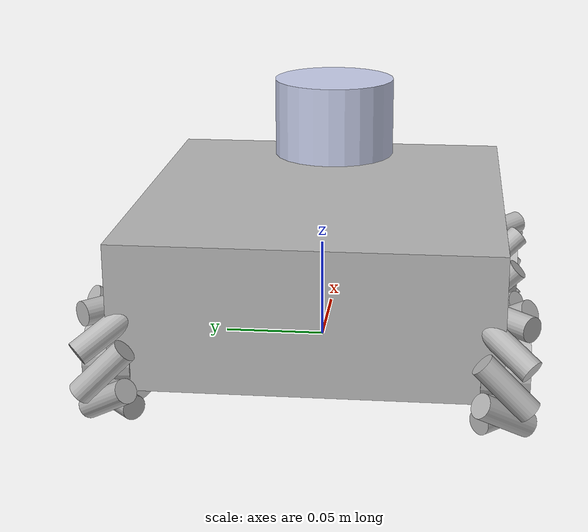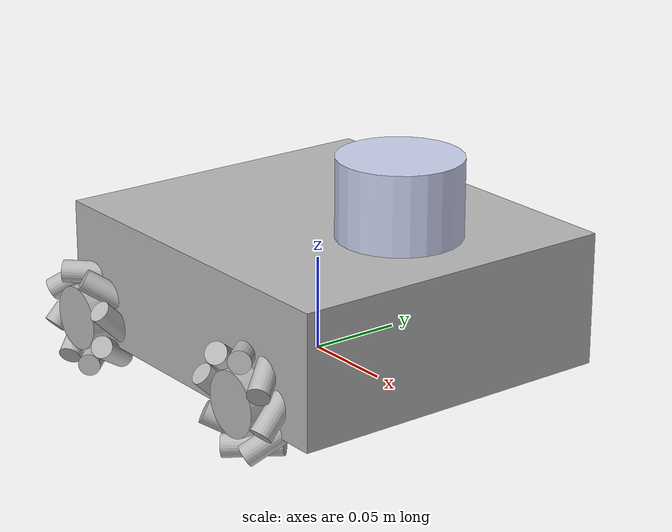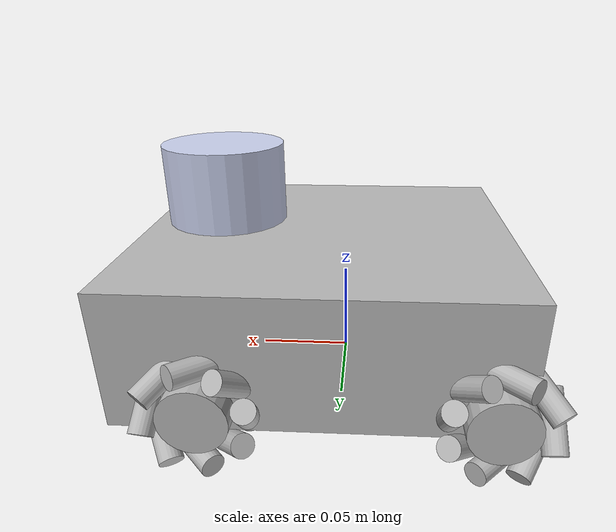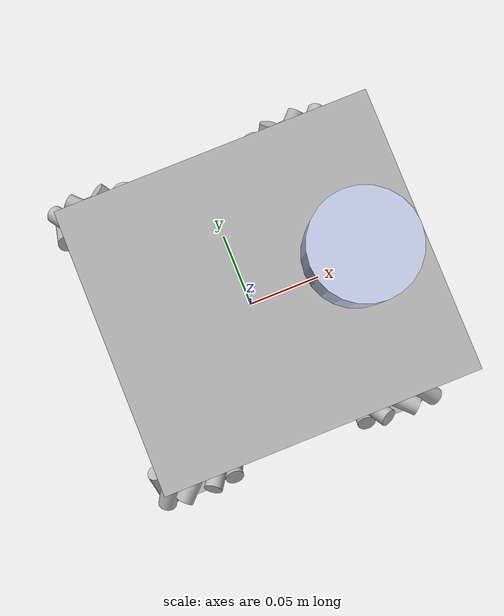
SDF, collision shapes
<?xml version="1.0"?>
<sdf version="1.10">
  <model name="small_rover">
    <self_collide>false</self_collide>
    <link name="base_link">
      <inertial><mass>0.764</mass><inertia><ixx>0.0038</ixx><iyy>0.0041</iyy><izz>0.0060</izz></inertia></inertial>
      <visual name="base_mesh"><pose>0 0 0 0 0 -1.570796327</pose><geometry><mesh><uri>model://small_rover_base/meshes/Rover_base_clean.obj</uri></mesh></geometry></visual>
      <collision name="chassis_collision"><pose>0.010 0 0.040 0 0 0</pose><geometry><box><size>0.200 0.180 0.070</size></box></geometry><surface><friction><ode><mu>0.8</mu><mu2>0.8</mu2></ode></friction></surface></collision>
    </link>

    <link name="lidar_link">
      <pose relative_to="base_link">0.065517 0 0.081 0 0 0</pose>
      <inertial><mass>0.020</mass><inertia><ixx>0.00001</ixx><iyy>0.00001</iyy><izz>0.00001</izz></inertia></inertial>
      <visual name="lidar_mesh"><pose>0 0 0 0 0 -1.570796327</pose><geometry><mesh><uri>model://RPLIDAR_C1_v1/meshes/RPLIDAR C1 v1.obj</uri></mesh></geometry><material><ambient>0.792157 0.819608 0.933333 1</ambient><diffuse>0.792157 0.819608 0.933333 1</diffuse><specular>0.2 0.2 0.2 1</specular></material></visual>
      <collision name="lidar_collision"><pose>0 0 0.020 0 0 0</pose><geometry><cylinder><radius>0.032</radius><length>0.041</length></cylinder></geometry></collision>
      <sensor name="rover_lidar" type="gpu_lidar"><pose>0 0 0.03 0 0 0</pose><topic>/small_rover/lidar/scan</topic><update_rate>10</update_rate><ray><scan><horizontal><samples>360</samples><resolution>1</resolution><min_angle>-3.141592654</min_angle><max_angle>3.141592654</max_angle></horizontal><vertical><samples>1</samples><resolution>1</resolution><min_angle>0</min_angle><max_angle>0</max_angle></vertical></scan><range><min>0.02</min><max>12.0</max><resolution>0.001</resolution></range></ray><always_on>true</always_on><visualize>true</visualize></sensor>
    </link>
    <joint name="lidar_joint" type="fixed"><parent>base_link</parent><child>lidar_link</child></joint>

    <link name="front_left_wheel">
      <pose relative_to="base_link">0.064610 0.090500 0.017000 0 0 -1.570796327</pose>
      <inertial><mass>0.030</mass><inertia><ixx>0.000008</ixx><iyy>0.000015</iyy><izz>0.000015</izz></inertia></inertial>
      <visual name="wheel_mesh"><geometry><mesh><uri>model://small_rover_wheels/meshes/Mecanum_Wheel_60mm_FrontLeft.obj</uri></mesh></geometry></visual>
      <collision name="hub_collision"><pose>0 0 0 0 1.570796327 0</pose><geometry><cylinder><radius>0.017</radius><length>0.022</length></cylinder></geometry><surface><friction><ode><mu>0.8</mu><mu2>0.8</mu2></ode></friction></surface></collision>
    </link>
    <joint name="front_left_wheel_joint" type="revolute"><pose relative_to="base_link">0.064610 0.090500 0.017000 0 0 -1.570796327</pose><parent>base_link</parent><child>front_left_wheel</child><axis><xyz expressed_in="base_link">0 1 0</xyz><limit><lower>-1e16</lower><upper>1e16</upper><effort>1.5</effort><velocity>80</velocity></limit><dynamics><damping>0.0005</damping></dynamics></axis></joint>
    <link name="front_left_roller_0"><pose relative_to="front_left_wheel">-0.000003000 0.022801000 0.003020000 0.000000000 -0.776639639 -0.131828760</pose><inertial><mass>0.003</mass><inertia><ixx>0.00000002</ixx><iyy>0.00000024</iyy><izz>0.00000024</izz></inertia></inertial><visual name="mesh"><geometry><mesh><uri>model://small_rover_wheels/meshes/roller_Varsayilan.obj</uri></mesh></geometry></visual><collision name="roller_contact"><pose>0 0 0 0 1.570796327 0</pose><geometry><cylinder><radius>0.0059</radius><length>0.0308</length></cylinder></geometry><surface><friction><ode><mu>1.2</mu><mu2>0.9</mu2></ode></friction></surface></collision></link>
    <joint name="front_left_roller_0_joint" type="revolute"><pose relative_to="front_left_wheel">-0.000003000 0.022801000 0.003020000 0.000000000 -0.776639639 -0.131828760</pose><parent>front_left_wheel</parent><child>front_left_roller_0</child><axis><xyz>1 0 0</xyz><limit><lower>-1e16</lower><upper>1e16</upper><effort>0</effort><velocity>1000</velocity></limit><dynamics><damping>0.00001</damping><friction>0.00001</friction></dynamics></axis></joint>
    <link name="front_left_roller_1"><pose relative_to="front_left_wheel">-0.000003000 0.013987279 0.018258204 0.888508739 -0.443722978 -0.671482516</pose><inertial><mass>0.003</mass><inertia><ixx>0.00000002</ixx><iyy>0.00000024</iyy><izz>0.00000024</izz></inertia></inertial><visual name="mesh"><geometry><mesh><uri>model://small_rover_wheels/meshes/roller_Varsayilan.obj</uri></mesh></geometry></visual><collision name="roller_contact"><pose>0 0 0 0 1.570796327 0</pose><geometry><cylinder><radius>0.0059</radius><length>0.0308</length></cylinder></geometry><surface><friction><ode><mu>1.2</mu><mu2>0.9</mu2></ode></friction></surface></collision></link>
    <joint name="front_left_roller_1_joint" type="revolute"><pose relative_to="front_left_wheel">-0.000003000 0.013987279 0.018258204 0.888508739 -0.443722978 -0.671482516</pose><parent>front_left_wheel</parent><child>front_left_roller_1</child><axis><xyz>1 0 0</xyz><limit><lower>-1e16</lower><upper>1e16</upper><effort>0</effort><velocity>1000</velocity></limit><dynamics><damping>0.00001</damping><friction>0.00001</friction></dynamics></axis></joint>
    <link name="front_left_roller_2"><pose relative_to="front_left_wheel">-0.000003000 -0.003020000 0.022801000 1.478126516 0.093895659 -0.780996596</pose><inertial><mass>0.003</mass><inertia><ixx>0.00000002</ixx><iyy>0.00000024</iyy><izz>0.00000024</izz></inertia></inertial><visual name="mesh"><geometry><mesh><uri>model://small_rover_wheels/meshes/roller_Varsayilan.obj</uri></mesh></geometry></visual><collision name="roller_contact"><pose>0 0 0 0 1.570796327 0</pose><geometry><cylinder><radius>0.0059</radius><length>0.0308</length></cylinder></geometry><surface><friction><ode><mu>1.2</mu><mu2>0.9</mu2></ode></friction></surface></collision></link>
    <joint name="front_left_roller_2_joint" type="revolute"><pose relative_to="front_left_wheel">-0.000003000 -0.003020000 0.022801000 1.478126516 0.093895659 -0.780996596</pose><parent>front_left_wheel</parent><child>front_left_roller_2</child><axis><xyz>1 0 0</xyz><limit><lower>-1e16</lower><upper>1e16</upper><effort>0</effort><velocity>1000</velocity></limit><dynamics><damping>0.00001</damping><friction>0.00001</friction></dynamics></axis></joint>
    <link name="front_left_roller_3"><pose relative_to="front_left_wheel">-0.000003000 -0.018258204 0.013987279 2.130530953 0.596678917 -0.545659158</pose><inertial><mass>0.003</mass><inertia><ixx>0.00000002</ixx><iyy>0.00000024</iyy><izz>0.00000024</izz></inertia></inertial><visual name="mesh"><geometry><mesh><uri>model://small_rover_wheels/meshes/roller_Varsayilan.obj</uri></mesh></geometry></visual><collision name="roller_contact"><pose>0 0 0 0 1.570796327 0</pose><geometry><cylinder><radius>0.0059</radius><length>0.0308</length></cylinder></geometry><surface><friction><ode><mu>1.2</mu><mu2>0.9</mu2></ode></friction></surface></collision></link>
    <joint name="front_left_roller_3_joint" type="revolute"><pose relative_to="front_left_wheel">-0.000003000 -0.018258204 0.013987279 2.130530953 0.596678917 -0.545659158</pose><parent>front_left_wheel</parent><child>front_left_roller_3</child><axis><xyz>1 0 0</xyz><limit><lower>-1e16</lower><upper>1e16</upper><effort>0</effort><velocity>1000</velocity></limit><dynamics><damping>0.00001</damping><friction>0.00001</friction></dynamics></axis></joint>
    <link name="front_left_roller_4"><pose relative_to="front_left_wheel">-0.000003000 -0.022801000 -0.003020000 3.141592654 0.776639639 0.131828760</pose><inertial><mass>0.003</mass><inertia><ixx>0.00000002</ixx><iyy>0.00000024</iyy><izz>0.00000024</izz></inertia></inertial><visual name="mesh"><geometry><mesh><uri>model://small_rover_wheels/meshes/roller_Varsayilan.obj</uri></mesh></geometry></visual><collision name="roller_contact"><pose>0 0 0 0 1.570796327 0</pose><geometry><cylinder><radius>0.0059</radius><length>0.0308</length></cylinder></geometry><surface><friction><ode><mu>1.2</mu><mu2>0.9</mu2></ode></friction></surface></collision></link>
    <joint name="front_left_roller_4_joint" type="revolute"><pose relative_to="front_left_wheel">-0.000003000 -0.022801000 -0.003020000 3.141592654 0.776639639 0.131828760</pose><parent>front_left_wheel</parent><child>front_left_roller_4</child><axis><xyz>1 0 0</xyz><limit><lower>-1e16</lower><upper>1e16</upper><effort>0</effort><velocity>1000</velocity></limit><dynamics><damping>0.00001</damping><friction>0.00001</friction></dynamics></axis></joint>
    <link name="front_left_roller_5"><pose relative_to="front_left_wheel">-0.000003000 -0.013987279 -0.018258204 -2.253083915 0.443722978 0.671482516</pose><inertial><mass>0.003</mass><inertia><ixx>0.00000002</ixx><iyy>0.00000024</iyy><izz>0.00000024</izz></inertia></inertial><visual name="mesh"><geometry><mesh><uri>model://small_rover_wheels/meshes/roller_Varsayilan.obj</uri></mesh></geometry></visual><collision name="roller_contact"><pose>0 0 0 0 1.570796327 0</pose><geometry><cylinder><radius>0.0059</radius><length>0.0308</length></cylinder></geometry><surface><friction><ode><mu>1.2</mu><mu2>0.9</mu2></ode></friction></surface></collision></link>
    <joint name="front_left_roller_5_joint" type="revolute"><pose relative_to="front_left_wheel">-0.000003000 -0.013987279 -0.018258204 -2.253083915 0.443722978 0.671482516</pose><parent>front_left_wheel</parent><child>front_left_roller_5</child><axis><xyz>1 0 0</xyz><limit><lower>-1e16</lower><upper>1e16</upper><effort>0</effort><velocity>1000</velocity></limit><dynamics><damping>0.00001</damping><friction>0.00001</friction></dynamics></axis></joint>
    <link name="front_left_roller_6"><pose relative_to="front_left_wheel">-0.000003000 0.003020000 -0.022801000 -1.663466138 -0.093895659 0.780996596</pose><inertial><mass>0.003</mass><inertia><ixx>0.00000002</ixx><iyy>0.00000024</iyy><izz>0.00000024</izz></inertia></inertial><visual name="mesh"><geometry><mesh><uri>model://small_rover_wheels/meshes/roller_Varsayilan.obj</uri></mesh></geometry></visual><collision name="roller_contact"><pose>0 0 0 0 1.570796327 0</pose><geometry><cylinder><radius>0.0059</radius><length>0.0308</length></cylinder></geometry><surface><friction><ode><mu>1.2</mu><mu2>0.9</mu2></ode></friction></surface></collision></link>
    <joint name="front_left_roller_6_joint" type="revolute"><pose relative_to="front_left_wheel">-0.000003000 0.003020000 -0.022801000 -1.663466138 -0.093895659 0.780996596</pose><parent>front_left_wheel</parent><child>front_left_roller_6</child><axis><xyz>1 0 0</xyz><limit><lower>-1e16</lower><upper>1e16</upper><effort>0</effort><velocity>1000</velocity></limit><dynamics><damping>0.00001</damping><friction>0.00001</friction></dynamics></axis></joint>
    <link name="front_left_roller_7"><pose relative_to="front_left_wheel">-0.000003000 0.018258204 -0.013987279 -1.011061701 -0.596678917 0.545659158</pose><inertial><mass>0.003</mass><inertia><ixx>0.00000002</ixx><iyy>0.00000024</iyy><izz>0.00000024</izz></inertia></inertial><visual name="mesh"><geometry><mesh><uri>model://small_rover_wheels/meshes/roller_Varsayilan.obj</uri></mesh></geometry></visual><collision name="roller_contact"><pose>0 0 0 0 1.570796327 0</pose><geometry><cylinder><radius>0.0059</radius><length>0.0308</length></cylinder></geometry><surface><friction><ode><mu>1.2</mu><mu2>0.9</mu2></ode></friction></surface></collision></link>
    <joint name="front_left_roller_7_joint" type="revolute"><pose relative_to="front_left_wheel">-0.000003000 0.018258204 -0.013987279 -1.011061701 -0.596678917 0.545659158</pose><parent>front_left_wheel</parent><child>front_left_roller_7</child><axis><xyz>1 0 0</xyz><limit><lower>-1e16</lower><upper>1e16</upper><effort>0</effort><velocity>1000</velocity></limit><dynamics><damping>0.00001</damping><friction>0.00001</friction></dynamics></axis></joint>

    <link name="front_right_wheel">
      <pose relative_to="base_link">0.064610 -0.090500 0.017000 0 0 -1.570796327</pose>
      <inertial><mass>0.030</mass><inertia><ixx>0.000008</ixx><iyy>0.000015</iyy><izz>0.000015</izz></inertia></inertial>
      <visual name="wheel_mesh"><geometry><mesh><uri>model://small_rover_wheels/meshes/Mecanum_Wheel_60mm_FrontRight.obj</uri></mesh></geometry></visual>
      <collision name="hub_collision"><pose>0 0 0 0 1.570796327 0</pose><geometry><cylinder><radius>0.017</radius><length>0.022</length></cylinder></geometry><surface><friction><ode><mu>0.8</mu><mu2>0.8</mu2></ode></friction></surface></collision>
    </link>
    <joint name="front_right_wheel_joint" type="revolute"><pose relative_to="base_link">0.064610 -0.090500 0.017000 0 0 -1.570796327</pose><parent>base_link</parent><child>front_right_wheel</child><axis><xyz expressed_in="base_link">0 1 0</xyz><limit><lower>-1e16</lower><upper>1e16</upper><effort>1.5</effort><velocity>80</velocity></limit><dynamics><damping>0.0005</damping></dynamics></axis></joint>
    <link name="front_right_roller_0"><pose relative_to="front_right_wheel">0.000003000 0.022801000 0.003020000 0.000000000 0.776639639 0.131828760</pose><inertial><mass>0.003</mass><inertia><ixx>0.00000002</ixx><iyy>0.00000024</iyy><izz>0.00000024</izz></inertia></inertial><visual name="mesh"><geometry><mesh><uri>model://small_rover_wheels/meshes/roller_Varsayilan.obj</uri></mesh></geometry></visual><collision name="roller_contact"><pose>0 0 0 0 1.570796327 0</pose><geometry><cylinder><radius>0.0059</radius><length>0.0308</length></cylinder></geometry><surface><friction><ode><mu>1.2</mu><mu2>0.9</mu2></ode></friction></surface></collision></link>
    <joint name="front_right_roller_0_joint" type="revolute"><pose relative_to="front_right_wheel">0.000003000 0.022801000 0.003020000 0.000000000 0.776639639 0.131828760</pose><parent>front_right_wheel</parent><child>front_right_roller_0</child><axis><xyz>1 0 0</xyz><limit><lower>-1e16</lower><upper>1e16</upper><effort>0</effort><velocity>1000</velocity></limit><dynamics><damping>0.00001</damping><friction>0.00001</friction></dynamics></axis></joint>
    <link name="front_right_roller_1"><pose relative_to="front_right_wheel">0.000003000 0.013987279 0.018258204 0.888508739 0.443722978 0.671482516</pose><inertial><mass>0.003</mass><inertia><ixx>0.00000002</ixx><iyy>0.00000024</iyy><izz>0.00000024</izz></inertia></inertial><visual name="mesh"><geometry><mesh><uri>model://small_rover_wheels/meshes/roller_Varsayilan.obj</uri></mesh></geometry></visual><collision name="roller_contact"><pose>0 0 0 0 1.570796327 0</pose><geometry><cylinder><radius>0.0059</radius><length>0.0308</length></cylinder></geometry><surface><friction><ode><mu>1.2</mu><mu2>0.9</mu2></ode></friction></surface></collision></link>
    <joint name="front_right_roller_1_joint" type="revolute"><pose relative_to="front_right_wheel">0.000003000 0.013987279 0.018258204 0.888508739 0.443722978 0.671482516</pose><parent>front_right_wheel</parent><child>front_right_roller_1</child><axis><xyz>1 0 0</xyz><limit><lower>-1e16</lower><upper>1e16</upper><effort>0</effort><velocity>1000</velocity></limit><dynamics><damping>0.00001</damping><friction>0.00001</friction></dynamics></axis></joint>
    <link name="front_right_roller_2"><pose relative_to="front_right_wheel">0.000003000 -0.003020000 0.022801000 1.478126516 -0.093895659 0.780996596</pose><inertial><mass>0.003</mass><inertia><ixx>0.00000002</ixx><iyy>0.00000024</iyy><izz>0.00000024</izz></inertia></inertial><visual name="mesh"><geometry><mesh><uri>model://small_rover_wheels/meshes/roller_Varsayilan.obj</uri></mesh></geometry></visual><collision name="roller_contact"><pose>0 0 0 0 1.570796327 0</pose><geometry><cylinder><radius>0.0059</radius><length>0.0308</length></cylinder></geometry><surface><friction><ode><mu>1.2</mu><mu2>0.9</mu2></ode></friction></surface></collision></link>
    <joint name="front_right_roller_2_joint" type="revolute"><pose relative_to="front_right_wheel">0.000003000 -0.003020000 0.022801000 1.478126516 -0.093895659 0.780996596</pose><parent>front_right_wheel</parent><child>front_right_roller_2</child><axis><xyz>1 0 0</xyz><limit><lower>-1e16</lower><upper>1e16</upper><effort>0</effort><velocity>1000</velocity></limit><dynamics><damping>0.00001</damping><friction>0.00001</friction></dynamics></axis></joint>
    <link name="front_right_roller_3"><pose relative_to="front_right_wheel">0.000003000 -0.018258204 0.013987279 2.130530953 -0.596678917 0.545659158</pose><inertial><mass>0.003</mass><inertia><ixx>0.00000002</ixx><iyy>0.00000024</iyy><izz>0.00000024</izz></inertia></inertial><visual name="mesh"><geometry><mesh><uri>model://small_rover_wheels/meshes/roller_Varsayilan.obj</uri></mesh></geometry></visual><collision name="roller_contact"><pose>0 0 0 0 1.570796327 0</pose><geometry><cylinder><radius>0.0059</radius><length>0.0308</length></cylinder></geometry><surface><friction><ode><mu>1.2</mu><mu2>0.9</mu2></ode></friction></surface></collision></link>
    <joint name="front_right_roller_3_joint" type="revolute"><pose relative_to="front_right_wheel">0.000003000 -0.018258204 0.013987279 2.130530953 -0.596678917 0.545659158</pose><parent>front_right_wheel</parent><child>front_right_roller_3</child><axis><xyz>1 0 0</xyz><limit><lower>-1e16</lower><upper>1e16</upper><effort>0</effort><velocity>1000</velocity></limit><dynamics><damping>0.00001</damping><friction>0.00001</friction></dynamics></axis></joint>
    <link name="front_right_roller_4"><pose relative_to="front_right_wheel">0.000003000 -0.022801000 -0.003020000 3.141592654 -0.776639639 -0.131828760</pose><inertial><mass>0.003</mass><inertia><ixx>0.00000002</ixx><iyy>0.00000024</iyy><izz>0.00000024</izz></inertia></inertial><visual name="mesh"><geometry><mesh><uri>model://small_rover_wheels/meshes/roller_Varsayilan.obj</uri></mesh></geometry></visual><collision name="roller_contact"><pose>0 0 0 0 1.570796327 0</pose><geometry><cylinder><radius>0.0059</radius><length>0.0308</length></cylinder></geometry><surface><friction><ode><mu>1.2</mu><mu2>0.9</mu2></ode></friction></surface></collision></link>
    <joint name="front_right_roller_4_joint" type="revolute"><pose relative_to="front_right_wheel">0.000003000 -0.022801000 -0.003020000 3.141592654 -0.776639639 -0.131828760</pose><parent>front_right_wheel</parent><child>front_right_roller_4</child><axis><xyz>1 0 0</xyz><limit><lower>-1e16</lower><upper>1e16</upper><effort>0</effort><velocity>1000</velocity></limit><dynamics><damping>0.00001</damping><friction>0.00001</friction></dynamics></axis></joint>
    <link name="front_right_roller_5"><pose relative_to="front_right_wheel">0.000003000 -0.013987279 -0.018258204 -2.253083915 -0.443722978 -0.671482516</pose><inertial><mass>0.003</mass><inertia><ixx>0.00000002</ixx><iyy>0.00000024</iyy><izz>0.00000024</izz></inertia></inertial><visual name="mesh"><geometry><mesh><uri>model://small_rover_wheels/meshes/roller_Varsayilan.obj</uri></mesh></geometry></visual><collision name="roller_contact"><pose>0 0 0 0 1.570796327 0</pose><geometry><cylinder><radius>0.0059</radius><length>0.0308</length></cylinder></geometry><surface><friction><ode><mu>1.2</mu><mu2>0.9</mu2></ode></friction></surface></collision></link>
    <joint name="front_right_roller_5_joint" type="revolute"><pose relative_to="front_right_wheel">0.000003000 -0.013987279 -0.018258204 -2.253083915 -0.443722978 -0.671482516</pose><parent>front_right_wheel</parent><child>front_right_roller_5</child><axis><xyz>1 0 0</xyz><limit><lower>-1e16</lower><upper>1e16</upper><effort>0</effort><velocity>1000</velocity></limit><dynamics><damping>0.00001</damping><friction>0.00001</friction></dynamics></axis></joint>
    <link name="front_right_roller_6"><pose relative_to="front_right_wheel">0.000003000 0.003020000 -0.022801000 -1.663466138 0.093895659 -0.780996596</pose><inertial><mass>0.003</mass><inertia><ixx>0.00000002</ixx><iyy>0.00000024</iyy><izz>0.00000024</izz></inertia></inertial><visual name="mesh"><geometry><mesh><uri>model://small_rover_wheels/meshes/roller_Varsayilan.obj</uri></mesh></geometry></visual><collision name="roller_contact"><pose>0 0 0 0 1.570796327 0</pose><geometry><cylinder><radius>0.0059</radius><length>0.0308</length></cylinder></geometry><surface><friction><ode><mu>1.2</mu><mu2>0.9</mu2></ode></friction></surface></collision></link>
    <joint name="front_right_roller_6_joint" type="revolute"><pose relative_to="front_right_wheel">0.000003000 0.003020000 -0.022801000 -1.663466138 0.093895659 -0.780996596</pose><parent>front_right_wheel</parent><child>front_right_roller_6</child><axis><xyz>1 0 0</xyz><limit><lower>-1e16</lower><upper>1e16</upper><effort>0</effort><velocity>1000</velocity></limit><dynamics><damping>0.00001</damping><friction>0.00001</friction></dynamics></axis></joint>
    <link name="front_right_roller_7"><pose relative_to="front_right_wheel">0.000003000 0.018258204 -0.013987279 -1.011061701 0.596678917 -0.545659158</pose><inertial><mass>0.003</mass><inertia><ixx>0.00000002</ixx><iyy>0.00000024</iyy><izz>0.00000024</izz></inertia></inertial><visual name="mesh"><geometry><mesh><uri>model://small_rover_wheels/meshes/roller_Varsayilan.obj</uri></mesh></geometry></visual><collision name="roller_contact"><pose>0 0 0 0 1.570796327 0</pose><geometry><cylinder><radius>0.0059</radius><length>0.0308</length></cylinder></geometry><surface><friction><ode><mu>1.2</mu><mu2>0.9</mu2></ode></friction></surface></collision></link>
    <joint name="front_right_roller_7_joint" type="revolute"><pose relative_to="front_right_wheel">0.000003000 0.018258204 -0.013987279 -1.011061701 0.596678917 -0.545659158</pose><parent>front_right_wheel</parent><child>front_right_roller_7</child><axis><xyz>1 0 0</xyz><limit><lower>-1e16</lower><upper>1e16</upper><effort>0</effort><velocity>1000</velocity></limit><dynamics><damping>0.00001</damping><friction>0.00001</friction></dynamics></axis></joint>

    <link name="rear_left_wheel">
      <pose relative_to="base_link">-0.074500 0.090500 0.017000 0 0 -1.570796327</pose>
      <inertial><mass>0.030</mass><inertia><ixx>0.000008</ixx><iyy>0.000015</iyy><izz>0.000015</izz></inertia></inertial>
      <visual name="wheel_mesh"><geometry><mesh><uri>model://small_rover_wheels/meshes/Mecanum_Wheel_60mm_RearLeft.obj</uri></mesh></geometry></visual>
      <collision name="hub_collision"><pose>0 0 0 0 1.570796327 0</pose><geometry><cylinder><radius>0.017</radius><length>0.022</length></cylinder></geometry><surface><friction><ode><mu>0.8</mu><mu2>0.8</mu2></ode></friction></surface></collision>
    </link>
    <joint name="rear_left_wheel_joint" type="revolute"><pose relative_to="base_link">-0.074500 0.090500 0.017000 0 0 -1.570796327</pose><parent>base_link</parent><child>rear_left_wheel</child><axis><xyz expressed_in="base_link">0 1 0</xyz><limit><lower>-1e16</lower><upper>1e16</upper><effort>1.5</effort><velocity>80</velocity></limit><dynamics><damping>0.0005</damping></dynamics></axis></joint>
    <link name="rear_left_roller_0"><pose relative_to="rear_left_wheel">-0.000003000 0.023000000 0.000031000 0.000000000 0.785398163 0.000000000</pose><inertial><mass>0.003</mass><inertia><ixx>0.00000002</ixx><iyy>0.00000024</iyy><izz>0.00000024</izz></inertia></inertial><visual name="mesh"><geometry><mesh><uri>model://small_rover_wheels/meshes/roller_Varsayilan.obj</uri></mesh></geometry></visual><collision name="roller_contact"><pose>0 0 0 0 1.570796327 0</pose><geometry><cylinder><radius>0.0059</radius><length>0.0308</length></cylinder></geometry><surface><friction><ode><mu>1.2</mu><mu2>0.9</mu2></ode></friction></surface></collision></link>
    <joint name="rear_left_roller_0_joint" type="revolute"><pose relative_to="rear_left_wheel">-0.000003000 0.023000000 0.000031000 0.000000000 0.785398163 0.000000000</pose><parent>rear_left_wheel</parent><child>rear_left_roller_0</child><axis><xyz>1 0 0</xyz><limit><lower>-1e16</lower><upper>1e16</upper><effort>0</effort><velocity>1000</velocity></limit><dynamics><damping>0.00001</damping><friction>0.00001</friction></dynamics></axis></joint>
    <link name="rear_left_roller_1"><pose relative_to="rear_left_wheel">-0.000003000 0.016241536 0.016285376 0.955316618 0.523598776 0.615479709</pose><inertial><mass>0.003</mass><inertia><ixx>0.00000002</ixx><iyy>0.00000024</iyy><izz>0.00000024</izz></inertia></inertial><visual name="mesh"><geometry><mesh><uri>model://small_rover_wheels/meshes/roller_Varsayilan.obj</uri></mesh></geometry></visual><collision name="roller_contact"><pose>0 0 0 0 1.570796327 0</pose><geometry><cylinder><radius>0.0059</radius><length>0.0308</length></cylinder></geometry><surface><friction><ode><mu>1.2</mu><mu2>0.9</mu2></ode></friction></surface></collision></link>
    <joint name="rear_left_roller_1_joint" type="revolute"><pose relative_to="rear_left_wheel">-0.000003000 0.016241536 0.016285376 0.955316618 0.523598776 0.615479709</pose><parent>rear_left_wheel</parent><child>rear_left_roller_1</child><axis><xyz>1 0 0</xyz><limit><lower>-1e16</lower><upper>1e16</upper><effort>0</effort><velocity>1000</velocity></limit><dynamics><damping>0.00001</damping><friction>0.00001</friction></dynamics></axis></joint>
    <link name="rear_left_roller_2"><pose relative_to="rear_left_wheel">-0.000003000 -0.000031000 0.023000000 1.570796327 0.000000000 0.785398163</pose><inertial><mass>0.003</mass><inertia><ixx>0.00000002</ixx><iyy>0.00000024</iyy><izz>0.00000024</izz></inertia></inertial><visual name="mesh"><geometry><mesh><uri>model://small_rover_wheels/meshes/roller_Varsayilan.obj</uri></mesh></geometry></visual><collision name="roller_contact"><pose>0 0 0 0 1.570796327 0</pose><geometry><cylinder><radius>0.0059</radius><length>0.0308</length></cylinder></geometry><surface><friction><ode><mu>1.2</mu><mu2>0.9</mu2></ode></friction></surface></collision></link>
    <joint name="rear_left_roller_2_joint" type="revolute"><pose relative_to="rear_left_wheel">-0.000003000 -0.000031000 0.023000000 1.570796327 0.000000000 0.785398163</pose><parent>rear_left_wheel</parent><child>rear_left_roller_2</child><axis><xyz>1 0 0</xyz><limit><lower>-1e16</lower><upper>1e16</upper><effort>0</effort><velocity>1000</velocity></limit><dynamics><damping>0.00001</damping><friction>0.00001</friction></dynamics></axis></joint>
    <link name="rear_left_roller_3"><pose relative_to="rear_left_wheel">-0.000003000 -0.016285376 0.016241536 2.186276035 -0.523598776 0.615479709</pose><inertial><mass>0.003</mass><inertia><ixx>0.00000002</ixx><iyy>0.00000024</iyy><izz>0.00000024</izz></inertia></inertial><visual name="mesh"><geometry><mesh><uri>model://small_rover_wheels/meshes/roller_Varsayilan.obj</uri></mesh></geometry></visual><collision name="roller_contact"><pose>0 0 0 0 1.570796327 0</pose><geometry><cylinder><radius>0.0059</radius><length>0.0308</length></cylinder></geometry><surface><friction><ode><mu>1.2</mu><mu2>0.9</mu2></ode></friction></surface></collision></link>
    <joint name="rear_left_roller_3_joint" type="revolute"><pose relative_to="rear_left_wheel">-0.000003000 -0.016285376 0.016241536 2.186276035 -0.523598776 0.615479709</pose><parent>rear_left_wheel</parent><child>rear_left_roller_3</child><axis><xyz>1 0 0</xyz><limit><lower>-1e16</lower><upper>1e16</upper><effort>0</effort><velocity>1000</velocity></limit><dynamics><damping>0.00001</damping><friction>0.00001</friction></dynamics></axis></joint>
    <link name="rear_left_roller_4"><pose relative_to="rear_left_wheel">-0.000003000 -0.023000000 -0.000031000 3.141592654 -0.785398163 0.000000000</pose><inertial><mass>0.003</mass><inertia><ixx>0.00000002</ixx><iyy>0.00000024</iyy><izz>0.00000024</izz></inertia></inertial><visual name="mesh"><geometry><mesh><uri>model://small_rover_wheels/meshes/roller_Varsayilan.obj</uri></mesh></geometry></visual><collision name="roller_contact"><pose>0 0 0 0 1.570796327 0</pose><geometry><cylinder><radius>0.0059</radius><length>0.0308</length></cylinder></geometry><surface><friction><ode><mu>1.2</mu><mu2>0.9</mu2></ode></friction></surface></collision></link>
    <joint name="rear_left_roller_4_joint" type="revolute"><pose relative_to="rear_left_wheel">-0.000003000 -0.023000000 -0.000031000 3.141592654 -0.785398163 0.000000000</pose><parent>rear_left_wheel</parent><child>rear_left_roller_4</child><axis><xyz>1 0 0</xyz><limit><lower>-1e16</lower><upper>1e16</upper><effort>0</effort><velocity>1000</velocity></limit><dynamics><damping>0.00001</damping><friction>0.00001</friction></dynamics></axis></joint>
    <link name="rear_left_roller_5"><pose relative_to="rear_left_wheel">-0.000003000 -0.016241536 -0.016285376 -2.186276035 -0.523598776 -0.615479709</pose><inertial><mass>0.003</mass><inertia><ixx>0.00000002</ixx><iyy>0.00000024</iyy><izz>0.00000024</izz></inertia></inertial><visual name="mesh"><geometry><mesh><uri>model://small_rover_wheels/meshes/roller_Varsayilan.obj</uri></mesh></geometry></visual><collision name="roller_contact"><pose>0 0 0 0 1.570796327 0</pose><geometry><cylinder><radius>0.0059</radius><length>0.0308</length></cylinder></geometry><surface><friction><ode><mu>1.2</mu><mu2>0.9</mu2></ode></friction></surface></collision></link>
    <joint name="rear_left_roller_5_joint" type="revolute"><pose relative_to="rear_left_wheel">-0.000003000 -0.016241536 -0.016285376 -2.186276035 -0.523598776 -0.615479709</pose><parent>rear_left_wheel</parent><child>rear_left_roller_5</child><axis><xyz>1 0 0</xyz><limit><lower>-1e16</lower><upper>1e16</upper><effort>0</effort><velocity>1000</velocity></limit><dynamics><damping>0.00001</damping><friction>0.00001</friction></dynamics></axis></joint>
    <link name="rear_left_roller_6"><pose relative_to="rear_left_wheel">-0.000003000 0.000031000 -0.023000000 -1.570796327 0.000000000 -0.785398163</pose><inertial><mass>0.003</mass><inertia><ixx>0.00000002</ixx><iyy>0.00000024</iyy><izz>0.00000024</izz></inertia></inertial><visual name="mesh"><geometry><mesh><uri>model://small_rover_wheels/meshes/roller_Varsayilan.obj</uri></mesh></geometry></visual><collision name="roller_contact"><pose>0 0 0 0 1.570796327 0</pose><geometry><cylinder><radius>0.0059</radius><length>0.0308</length></cylinder></geometry><surface><friction><ode><mu>1.2</mu><mu2>0.9</mu2></ode></friction></surface></collision></link>
    <joint name="rear_left_roller_6_joint" type="revolute"><pose relative_to="rear_left_wheel">-0.000003000 0.000031000 -0.023000000 -1.570796327 0.000000000 -0.785398163</pose><parent>rear_left_wheel</parent><child>rear_left_roller_6</child><axis><xyz>1 0 0</xyz><limit><lower>-1e16</lower><upper>1e16</upper><effort>0</effort><velocity>1000</velocity></limit><dynamics><damping>0.00001</damping><friction>0.00001</friction></dynamics></axis></joint>
    <link name="rear_left_roller_7"><pose relative_to="rear_left_wheel">-0.000003000 0.016285376 -0.016241536 -0.955316618 0.523598776 -0.615479709</pose><inertial><mass>0.003</mass><inertia><ixx>0.00000002</ixx><iyy>0.00000024</iyy><izz>0.00000024</izz></inertia></inertial><visual name="mesh"><geometry><mesh><uri>model://small_rover_wheels/meshes/roller_Varsayilan.obj</uri></mesh></geometry></visual><collision name="roller_contact"><pose>0 0 0 0 1.570796327 0</pose><geometry><cylinder><radius>0.0059</radius><length>0.0308</length></cylinder></geometry><surface><friction><ode><mu>1.2</mu><mu2>0.9</mu2></ode></friction></surface></collision></link>
    <joint name="rear_left_roller_7_joint" type="revolute"><pose relative_to="rear_left_wheel">-0.000003000 0.016285376 -0.016241536 -0.955316618 0.523598776 -0.615479709</pose><parent>rear_left_wheel</parent><child>rear_left_roller_7</child><axis><xyz>1 0 0</xyz><limit><lower>-1e16</lower><upper>1e16</upper><effort>0</effort><velocity>1000</velocity></limit><dynamics><damping>0.00001</damping><friction>0.00001</friction></dynamics></axis></joint>

    <link name="rear_right_wheel">
      <pose relative_to="base_link">-0.074500 -0.090500 0.017000 0 0 -1.570796327</pose>
      <inertial><mass>0.030</mass><inertia><ixx>0.000008</ixx><iyy>0.000015</iyy><izz>0.000015</izz></inertia></inertial>
      <visual name="wheel_mesh"><geometry><mesh><uri>model://small_rover_wheels/meshes/Mecanum_Wheel_60mm_RearRight.obj</uri></mesh></geometry></visual>
      <collision name="hub_collision"><pose>0 0 0 0 1.570796327 0</pose><geometry><cylinder><radius>0.017</radius><length>0.022</length></cylinder></geometry><surface><friction><ode><mu>0.8</mu><mu2>0.8</mu2></ode></friction></surface></collision>
    </link>
    <joint name="rear_right_wheel_joint" type="revolute"><pose relative_to="base_link">-0.074500 -0.090500 0.017000 0 0 -1.570796327</pose><parent>base_link</parent><child>rear_right_wheel</child><axis><xyz expressed_in="base_link">0 1 0</xyz><limit><lower>-1e16</lower><upper>1e16</upper><effort>1.5</effort><velocity>80</velocity></limit><dynamics><damping>0.0005</damping></dynamics></axis></joint>
    <link name="rear_right_roller_0"><pose relative_to="rear_right_wheel">0.000003000 0.023000000 0.000031000 0.000000000 -0.785398163 0.000000000</pose><inertial><mass>0.003</mass><inertia><ixx>0.00000002</ixx><iyy>0.00000024</iyy><izz>0.00000024</izz></inertia></inertial><visual name="mesh"><geometry><mesh><uri>model://small_rover_wheels/meshes/roller_Varsayilan.obj</uri></mesh></geometry></visual><collision name="roller_contact"><pose>0 0 0 0 1.570796327 0</pose><geometry><cylinder><radius>0.0059</radius><length>0.0308</length></cylinder></geometry><surface><friction><ode><mu>1.2</mu><mu2>0.9</mu2></ode></friction></surface></collision></link>
    <joint name="rear_right_roller_0_joint" type="revolute"><pose relative_to="rear_right_wheel">0.000003000 0.023000000 0.000031000 0.000000000 -0.785398163 0.000000000</pose><parent>rear_right_wheel</parent><child>rear_right_roller_0</child><axis><xyz>1 0 0</xyz><limit><lower>-1e16</lower><upper>1e16</upper><effort>0</effort><velocity>1000</velocity></limit><dynamics><damping>0.00001</damping><friction>0.00001</friction></dynamics></axis></joint>
    <link name="rear_right_roller_1"><pose relative_to="rear_right_wheel">0.000003000 0.016241536 0.016285376 0.955316618 -0.523598776 -0.615479709</pose><inertial><mass>0.003</mass><inertia><ixx>0.00000002</ixx><iyy>0.00000024</iyy><izz>0.00000024</izz></inertia></inertial><visual name="mesh"><geometry><mesh><uri>model://small_rover_wheels/meshes/roller_Varsayilan.obj</uri></mesh></geometry></visual><collision name="roller_contact"><pose>0 0 0 0 1.570796327 0</pose><geometry><cylinder><radius>0.0059</radius><length>0.0308</length></cylinder></geometry><surface><friction><ode><mu>1.2</mu><mu2>0.9</mu2></ode></friction></surface></collision></link>
    <joint name="rear_right_roller_1_joint" type="revolute"><pose relative_to="rear_right_wheel">0.000003000 0.016241536 0.016285376 0.955316618 -0.523598776 -0.615479709</pose><parent>rear_right_wheel</parent><child>rear_right_roller_1</child><axis><xyz>1 0 0</xyz><limit><lower>-1e16</lower><upper>1e16</upper><effort>0</effort><velocity>1000</velocity></limit><dynamics><damping>0.00001</damping><friction>0.00001</friction></dynamics></axis></joint>
    <link name="rear_right_roller_2"><pose relative_to="rear_right_wheel">0.000003000 -0.000031000 0.023000000 1.570796327 0.000000000 -0.785398163</pose><inertial><mass>0.003</mass><inertia><ixx>0.00000002</ixx><iyy>0.00000024</iyy><izz>0.00000024</izz></inertia></inertial><visual name="mesh"><geometry><mesh><uri>model://small_rover_wheels/meshes/roller_Varsayilan.obj</uri></mesh></geometry></visual><collision name="roller_contact"><pose>0 0 0 0 1.570796327 0</pose><geometry><cylinder><radius>0.0059</radius><length>0.0308</length></cylinder></geometry><surface><friction><ode><mu>1.2</mu><mu2>0.9</mu2></ode></friction></surface></collision></link>
    <joint name="rear_right_roller_2_joint" type="revolute"><pose relative_to="rear_right_wheel">0.000003000 -0.000031000 0.023000000 1.570796327 0.000000000 -0.785398163</pose><parent>rear_right_wheel</parent><child>rear_right_roller_2</child><axis><xyz>1 0 0</xyz><limit><lower>-1e16</lower><upper>1e16</upper><effort>0</effort><velocity>1000</velocity></limit><dynamics><damping>0.00001</damping><friction>0.00001</friction></dynamics></axis></joint>
    <link name="rear_right_roller_3"><pose relative_to="rear_right_wheel">0.000003000 -0.016285376 0.016241536 2.186276035 0.523598776 -0.615479709</pose><inertial><mass>0.003</mass><inertia><ixx>0.00000002</ixx><iyy>0.00000024</iyy><izz>0.00000024</izz></inertia></inertial><visual name="mesh"><geometry><mesh><uri>model://small_rover_wheels/meshes/roller_Varsayilan.obj</uri></mesh></geometry></visual><collision name="roller_contact"><pose>0 0 0 0 1.570796327 0</pose><geometry><cylinder><radius>0.0059</radius><length>0.0308</length></cylinder></geometry><surface><friction><ode><mu>1.2</mu><mu2>0.9</mu2></ode></friction></surface></collision></link>
    <joint name="rear_right_roller_3_joint" type="revolute"><pose relative_to="rear_right_wheel">0.000003000 -0.016285376 0.016241536 2.186276035 0.523598776 -0.615479709</pose><parent>rear_right_wheel</parent><child>rear_right_roller_3</child><axis><xyz>1 0 0</xyz><limit><lower>-1e16</lower><upper>1e16</upper><effort>0</effort><velocity>1000</velocity></limit><dynamics><damping>0.00001</damping><friction>0.00001</friction></dynamics></axis></joint>
    <link name="rear_right_roller_4"><pose relative_to="rear_right_wheel">0.000003000 -0.023000000 -0.000031000 3.141592654 0.785398163 0.000000000</pose><inertial><mass>0.003</mass><inertia><ixx>0.00000002</ixx><iyy>0.00000024</iyy><izz>0.00000024</izz></inertia></inertial><visual name="mesh"><geometry><mesh><uri>model://small_rover_wheels/meshes/roller_Varsayilan.obj</uri></mesh></geometry></visual><collision name="roller_contact"><pose>0 0 0 0 1.570796327 0</pose><geometry><cylinder><radius>0.0059</radius><length>0.0308</length></cylinder></geometry><surface><friction><ode><mu>1.2</mu><mu2>0.9</mu2></ode></friction></surface></collision></link>
    <joint name="rear_right_roller_4_joint" type="revolute"><pose relative_to="rear_right_wheel">0.000003000 -0.023000000 -0.000031000 3.141592654 0.785398163 0.000000000</pose><parent>rear_right_wheel</parent><child>rear_right_roller_4</child><axis><xyz>1 0 0</xyz><limit><lower>-1e16</lower><upper>1e16</upper><effort>0</effort><velocity>1000</velocity></limit><dynamics><damping>0.00001</damping><friction>0.00001</friction></dynamics></axis></joint>
    <link name="rear_right_roller_5"><pose relative_to="rear_right_wheel">0.000003000 -0.016241536 -0.016285376 -2.186276035 0.523598776 0.615479709</pose><inertial><mass>0.003</mass><inertia><ixx>0.00000002</ixx><iyy>0.00000024</iyy><izz>0.00000024</izz></inertia></inertial><visual name="mesh"><geometry><mesh><uri>model://small_rover_wheels/meshes/roller_Varsayilan.obj</uri></mesh></geometry></visual><collision name="roller_contact"><pose>0 0 0 0 1.570796327 0</pose><geometry><cylinder><radius>0.0059</radius><length>0.0308</length></cylinder></geometry><surface><friction><ode><mu>1.2</mu><mu2>0.9</mu2></ode></friction></surface></collision></link>
    <joint name="rear_right_roller_5_joint" type="revolute"><pose relative_to="rear_right_wheel">0.000003000 -0.016241536 -0.016285376 -2.186276035 0.523598776 0.615479709</pose><parent>rear_right_wheel</parent><child>rear_right_roller_5</child><axis><xyz>1 0 0</xyz><limit><lower>-1e16</lower><upper>1e16</upper><effort>0</effort><velocity>1000</velocity></limit><dynamics><damping>0.00001</damping><friction>0.00001</friction></dynamics></axis></joint>
    <link name="rear_right_roller_6"><pose relative_to="rear_right_wheel">0.000003000 0.000031000 -0.023000000 -1.570796327 0.000000000 0.785398163</pose><inertial><mass>0.003</mass><inertia><ixx>0.00000002</ixx><iyy>0.00000024</iyy><izz>0.00000024</izz></inertia></inertial><visual name="mesh"><geometry><mesh><uri>model://small_rover_wheels/meshes/roller_Varsayilan.obj</uri></mesh></geometry></visual><collision name="roller_contact"><pose>0 0 0 0 1.570796327 0</pose><geometry><cylinder><radius>0.0059</radius><length>0.0308</length></cylinder></geometry><surface><friction><ode><mu>1.2</mu><mu2>0.9</mu2></ode></friction></surface></collision></link>
    <joint name="rear_right_roller_6_joint" type="revolute"><pose relative_to="rear_right_wheel">0.000003000 0.000031000 -0.023000000 -1.570796327 0.000000000 0.785398163</pose><parent>rear_right_wheel</parent><child>rear_right_roller_6</child><axis><xyz>1 0 0</xyz><limit><lower>-1e16</lower><upper>1e16</upper><effort>0</effort><velocity>1000</velocity></limit><dynamics><damping>0.00001</damping><friction>0.00001</friction></dynamics></axis></joint>
    <link name="rear_right_roller_7"><pose relative_to="rear_right_wheel">0.000003000 0.016285376 -0.016241536 -0.955316618 -0.523598776 0.615479709</pose><inertial><mass>0.003</mass><inertia><ixx>0.00000002</ixx><iyy>0.00000024</iyy><izz>0.00000024</izz></inertia></inertial><visual name="mesh"><geometry><mesh><uri>model://small_rover_wheels/meshes/roller_Varsayilan.obj</uri></mesh></geometry></visual><collision name="roller_contact"><pose>0 0 0 0 1.570796327 0</pose><geometry><cylinder><radius>0.0059</radius><length>0.0308</length></cylinder></geometry><surface><friction><ode><mu>1.2</mu><mu2>0.9</mu2></ode></friction></surface></collision></link>
    <joint name="rear_right_roller_7_joint" type="revolute"><pose relative_to="rear_right_wheel">0.000003000 0.016285376 -0.016241536 -0.955316618 -0.523598776 0.615479709</pose><parent>rear_right_wheel</parent><child>rear_right_roller_7</child><axis><xyz>1 0 0</xyz><limit><lower>-1e16</lower><upper>1e16</upper><effort>0</effort><velocity>1000</velocity></limit><dynamics><damping>0.00001</damping><friction>0.00001</friction></dynamics></axis></joint>

    <plugin filename="gz-sim-mecanum-drive-system" name="gz::sim::systems::MecanumDrive">
      <front_left_joint>front_left_wheel_joint</front_left_joint>
      <front_right_joint>front_right_wheel_joint</front_right_joint>
      <back_left_joint>rear_left_wheel_joint</back_left_joint>
      <back_right_joint>rear_right_wheel_joint</back_right_joint>
      <wheel_separation>0.181</wheel_separation>
      <wheelbase>0.13911</wheelbase>
      <wheel_radius>0.030</wheel_radius>
      <topic>/small_rover/gz_cmd_vel</topic>
      <odom_topic>/small_rover/odometry</odom_topic>
      <frame_id>odom</frame_id>
      <child_frame_id>base_link</child_frame_id>
      <odom_publish_frequency>50</odom_publish_frequency>
      <min_acceleration>-2.0</min_acceleration>
      <max_acceleration>2.0</max_acceleration>
      <max_velocity>0.6</max_velocity>
    </plugin>
    <plugin filename="gz-sim-joint-state-publisher-system" name="gz::sim::systems::JointStatePublisher"><topic>/small_rover/joint_state</topic></plugin>
  </model>
</sdf>
